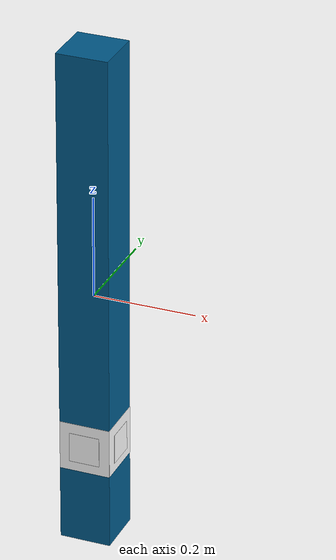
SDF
<?xml version="1.0" ?>
<sdf version="1.9">
  <model name="fix_balise_3">
    <static>true</static>
    <link name="link">
      <inertial>
        <mass>1.5</mass>
        <inertia>
          <ixx>0.166</ixx>
          <iyy>0.166</iyy>
          <izz>0.166</izz>
          <ixy>0</ixy>
          <ixz>0</ixz>
          <iyz>0</iyz>
        </inertia>
      </inertial>

      <collision name="collision">
        <geometry>
          <box>
            <size>0.1 0.1 1.0</size>
          </box>
        </geometry>
        <surface>
          <friction>
            <ode>
              <mu>1.0</mu>
              <mu2>1.0</mu2>
            </ode>
          </friction>
        </surface>
      </collision>

      <visual name="side_faces">
        <geometry>
          <box>
            <size>0.1 0.1 1.0</size>
          </box>
        </geometry>
        <material>
          <ambient>0 0.357 0.549 1</ambient>
          <diffuse>0 0.357 0.549 1</diffuse>
        </material>
      </visual>

      <visual name="marker_border">
        <pose>0.05 0 -0.3 0.0 1.5708 0</pose>
      <geometry>
        <box>
          <size>0.1 0.1 0.0004</size>
        </box>
      </geometry>
      <material>
        <diffuse>1 1 1 1</diffuse> <!-- Weiß -->
      </material>
    </visual>
      <visual name="aruco_marker">
        <pose>0.052 0 -0.3 0.0 1.5708 0</pose>
        <geometry>
          <box>
            <size>0.06 0.06 0.0005</size>
          </box>
        </geometry>
        <material>
          <diffuse>1 1 1 1</diffuse>
          <pbr>
            <metal>
              <albedo_map>file://models/fix_balise_3/aruco_93.png</albedo_map>
              <metalness>0.0</metalness>
              <roughness>0.8</roughness>
            </metal>
          </pbr>
        </material>
      </visual>

      <visual name="marker_border_2">
        <pose>0.0 0.05 -0.3 0 1.5708 1.5708</pose>
      <geometry>
        <box>
          <size>0.1 0.1 0.0004</size>
        </box>
      </geometry>
      <material>
        <diffuse>1 1 1 1</diffuse> <!-- Weiß -->
      </material>
    </visual>
      <visual name="aruco_marker_2">
        <pose>0 0.052 -0.3 0 1.5708 1.5708</pose>
        <geometry>
          <box>
            <size>0.06 0.06 0.0005</size>
          </box>
        </geometry>
        <material>
          <diffuse>1 1 1 1</diffuse>
          <pbr>
            <metal>
              <albedo_map>file://models/fix_balise_3/aruco_93.png</albedo_map>
              <metalness>0.0</metalness>
              <roughness>0.8</roughness>
            </metal>
          </pbr>
        </material>
      </visual>

      <visual name="marker_border_3">
        <pose>0.0 -0.05 -0.3 0 1.5708 -1.5708</pose>
      <geometry>
        <box>
          <size>0.1 0.1 0.0004</size>
        </box>
      </geometry>
      <material>
        <diffuse>1 1 1 1</diffuse> <!-- Weiß -->
      </material>
    </visual>
      <visual name="aruco_marker_3">
        <pose>0 -0.052 -0.3 0 1.5708 -1.5708</pose>
        <geometry>
          <box>
            <size>0.06 0.06 0.0005</size>
          </box>
        </geometry>
        <material>
          <diffuse>1 1 1 1</diffuse>
          <pbr>
            <metal>
              <albedo_map>file://models/fix_balise_3/aruco_93.png</albedo_map>
              <metalness>0.0</metalness>
              <roughness>0.8</roughness>
            </metal>
          </pbr>
        </material>
      </visual>

    </link>
  </model>
</sdf>
